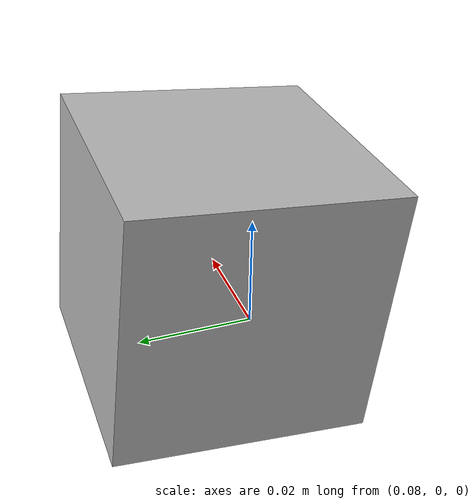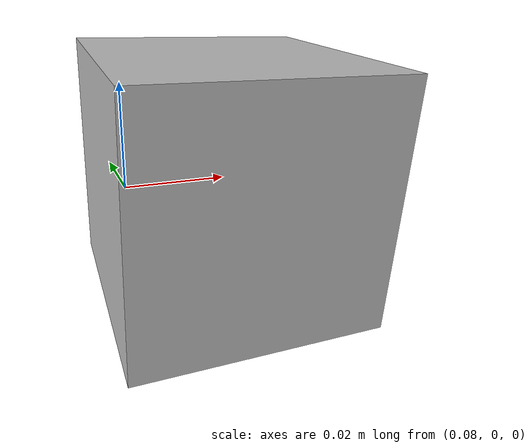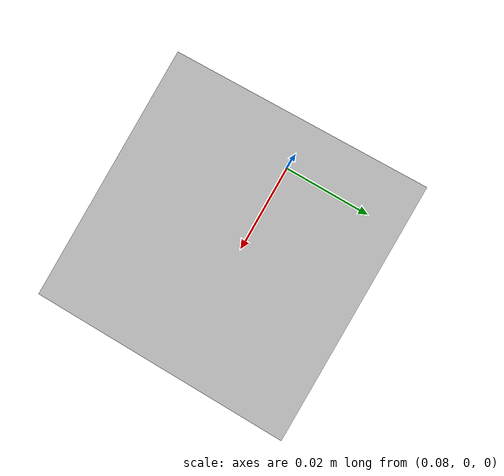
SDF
<?xml version="1.0"?>
<sdf version="1.4">
  <model name="ExampleControlZone">
  <link name="L2ControlZone">
    <pose>0.1 0 0 0.1 0 0</pose>
    <inertial>
      <mass>not_read</mass>
    </inertial>
    <collision>
      <geometry>
        <box><size>0.05 0.05 0.05</size></box>
      </geometry>
    </collision>
    <visual>
      <geometry>
        <box><size>0.05 0.05 0.05</size></box>
      </geometry>
      <material>
        <script>Gazebo/Purple</script>
      </material>
      <transparency>0.1</transparency>
    </visual>
  </link>
  </model>
</sdf>
